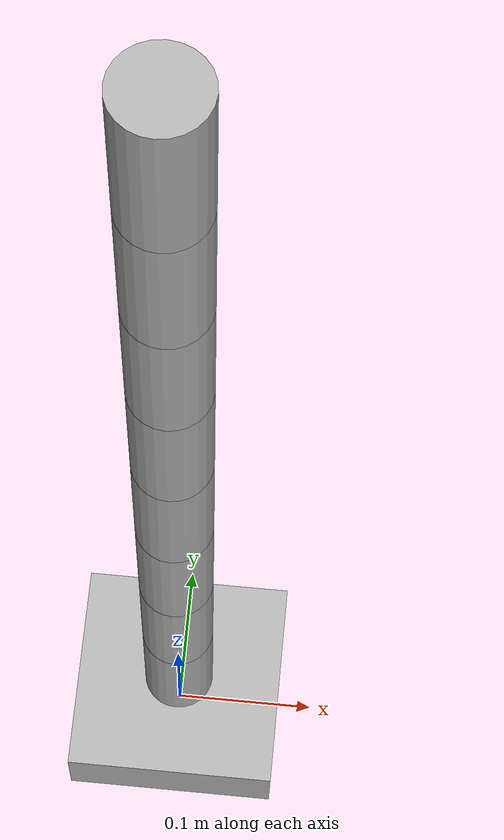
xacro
<?xml version="1.0"?>
<robot name="eight_axis_canopen" xmlns:xacro="http://www.ros.org/wiki/xacro">
  <xacro:arg name="bus_config" default=""/>
  <xacro:arg name="master_config" default=""/>
  <xacro:arg name="can_interface_name" default="can0"/>
  <xacro:arg name="master_bin" default=""/>

  <material name="gray">
    <color rgba="0.7 0.7 0.7 1.0"/>
  </material>

  <xacro:macro name="segment" params="parent child joint_name z">
    <link name="${child}">
      <visual>
        <origin xyz="0 0 0.05" rpy="0 0 0"/>
        <geometry>
          <cylinder radius="0.025" length="0.10"/>
        </geometry>
        <material name="gray"/>
      </visual>
      <collision>
        <origin xyz="0 0 0.05" rpy="0 0 0"/>
        <geometry>
          <cylinder radius="0.025" length="0.10"/>
        </geometry>
      </collision>
      <inertial>
        <origin xyz="0 0 0.05" rpy="0 0 0"/>
        <mass value="0.2"/>
        <inertia ixx="0.0003" ixy="0.0" ixz="0.0" iyy="0.0003" iyz="0.0" izz="0.0001"/>
      </inertial>
    </link>

    <joint name="${joint_name}" type="revolute">
      <parent link="${parent}"/>
      <child link="${child}"/>
      <origin xyz="0 0 ${z}" rpy="0 0 0"/>
      <axis xyz="0 0 1"/>
      <limit lower="-6.28318530718" upper="6.28318530718" effort="100.0" velocity="3.0"/>
    </joint>
  </xacro:macro>

  <link name="base_link">
    <visual>
      <origin xyz="0 0 0.025" rpy="0 0 0"/>
      <geometry>
        <box size="0.15 0.15 0.05"/>
      </geometry>
      <material name="gray"/>
    </visual>
    <collision>
      <origin xyz="0 0 0.025" rpy="0 0 0"/>
      <geometry>
        <box size="0.15 0.15 0.05"/>
      </geometry>
    </collision>
    <inertial>
      <origin xyz="0 0 0.025" rpy="0 0 0"/>
      <mass value="1.0"/>
      <inertia ixx="0.002" ixy="0.0" ixz="0.0" iyy="0.002" iyz="0.0" izz="0.002"/>
    </inertial>
  </link>

  <xacro:segment parent="base_link" child="link_1" joint_name="joint_1" z="0.05"/>
  <xacro:segment parent="link_1" child="link_2" joint_name="joint_2" z="0.10"/>
  <xacro:segment parent="link_2" child="link_3" joint_name="joint_3" z="0.10"/>
  <xacro:segment parent="link_3" child="link_4" joint_name="joint_4" z="0.10"/>
  <xacro:segment parent="link_4" child="link_5" joint_name="joint_5" z="0.10"/>
  <xacro:segment parent="link_5" child="link_6" joint_name="joint_6" z="0.10"/>
  <xacro:segment parent="link_6" child="link_7" joint_name="joint_7" z="0.10"/>
  <xacro:segment parent="link_7" child="link_8" joint_name="joint_8" z="0.10"/>

  <ros2_control name="EightAxisCanopenSystem" type="system">
    <hardware>
      <plugin>canopen_ros2_control/RobotSystem</plugin>
      <param name="bus_config">$(arg bus_config)</param>
      <param name="master_config">$(arg master_config)</param>
      <param name="can_interface_name">$(arg can_interface_name)</param>
      <param name="master_bin">$(arg master_bin)</param>
    </hardware>

    <joint name="joint_1">
      <param name="device_name">joint_1</param>
      <command_interface name="position"/>
      <state_interface name="position"/>
      <state_interface name="velocity"/>
    </joint>

    <joint name="joint_2">
      <param name="device_name">joint_2</param>
      <command_interface name="position"/>
      <state_interface name="position"/>
      <state_interface name="velocity"/>
    </joint>

    <joint name="joint_3">
      <param name="device_name">joint_3</param>
      <command_interface name="position"/>
      <state_interface name="position"/>
      <state_interface name="velocity"/>
    </joint>

    <joint name="joint_4">
      <param name="device_name">joint_4</param>
      <command_interface name="position"/>
      <state_interface name="position"/>
      <state_interface name="velocity"/>
    </joint>

    <joint name="joint_5">
      <param name="device_name">joint_5</param>
      <command_interface name="position"/>
      <state_interface name="position"/>
      <state_interface name="velocity"/>
    </joint>

    <joint name="joint_6">
      <param name="device_name">joint_6</param>
      <command_interface name="position"/>
      <state_interface name="position"/>
      <state_interface name="velocity"/>
    </joint>

    <joint name="joint_7">
      <param name="device_name">joint_7</param>
      <command_interface name="position"/>
      <state_interface name="position"/>
      <state_interface name="velocity"/>
    </joint>

    <joint name="joint_8">
      <param name="device_name">joint_8</param>
      <command_interface name="position"/>
      <state_interface name="position"/>
      <state_interface name="velocity"/>
    </joint>
  </ros2_control>
</robot>
